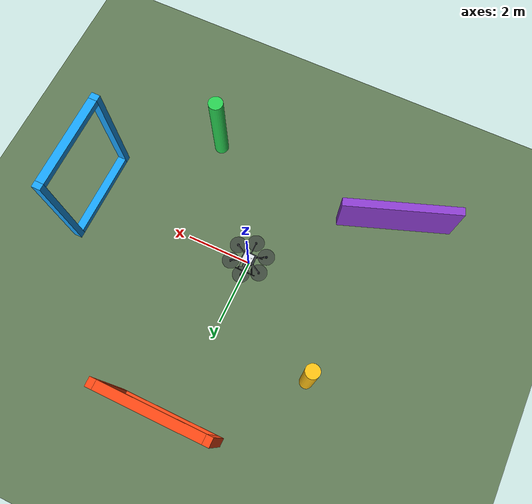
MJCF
<mujoco model="e6106-equivalent-nominal-9kg">
  <compiler angle="degree" inertiafromgeom="true" inertiagrouprange="5 5" />
  <option timestep="0.001" density="1.204" viscosity="0.000018" integrator="RK4" />
  <visual>
    <global azimuth="135" elevation="-20" />
    <rgba haze="0.72 0.84 0.96 1" />
    <headlight ambient="0.55 0.55 0.55" diffuse="0.8 0.8 0.8" specular="0.25 0.25 0.25" />
  </visual>
  <asset>
    <texture name="fpv_sky" type="skybox" builtin="gradient" rgb1="0.62 0.78 0.95" rgb2="0.78 0.94 1" width="512" height="3072" />
  </asset>
  <worldbody>
    <light name="key-light" pos="0 -5 12" dir="0 0.25 -1" diffuse="0.95 0.95 0.92" ambient="0.25 0.25 0.25" directional="true" castshadow="true" />
    <light name="fill-light" pos="8 4 7" dir="-0.7 -0.3 -1" diffuse="0.55 0.65 0.8" ambient="0.12 0.12 0.16" directional="true" castshadow="true" />
    <geom name="ground" type="plane" size="30 30 0.1" rgba="0.38 0.48 0.34 1" friction="0.35 0.02 0.001" />
    <body name="course_north-gate" pos="0 5 1.8" euler="0 0 0">
      <geom contype="5" conaffinity="3" friction="0.12 0.002 0.0001" condim="3" rgba="1 0.28 0.08 1" name="north-gate_left" type="box" pos="-1.49 0 0" size="0.09 0.125 1.58" />
      <geom contype="5" conaffinity="3" friction="0.12 0.002 0.0001" condim="3" rgba="1 0.28 0.08 1" name="north-gate_right" type="box" pos="1.49 0 0" size="0.09 0.125 1.58" />
      <geom contype="5" conaffinity="3" friction="0.12 0.002 0.0001" condim="3" rgba="1 0.28 0.08 1" name="north-gate_top" type="box" pos="0 0 1.49" size="1.4 0.125 0.09" />
      <geom contype="5" conaffinity="3" friction="0.12 0.002 0.0001" condim="3" rgba="1 0.28 0.08 1" name="north-gate_bottom" type="box" pos="0 0 -1.49" size="1.4 0.125 0.09" />
    </body>
    <body name="course_east-gate" pos="5 0 2" euler="0 0 90">
      <geom contype="5" conaffinity="3" friction="0.12 0.002 0.0001" condim="3" rgba="0.1 0.65 1 1" name="east-gate_left" type="box" pos="-1.39 0 0" size="0.09 0.125 1.68" />
      <geom contype="5" conaffinity="3" friction="0.12 0.002 0.0001" condim="3" rgba="0.1 0.65 1 1" name="east-gate_right" type="box" pos="1.39 0 0" size="0.09 0.125 1.68" />
      <geom contype="5" conaffinity="3" friction="0.12 0.002 0.0001" condim="3" rgba="0.1 0.65 1 1" name="east-gate_top" type="box" pos="0 0 1.59" size="1.3 0.125 0.09" />
      <geom contype="5" conaffinity="3" friction="0.12 0.002 0.0001" condim="3" rgba="0.1 0.65 1 1" name="east-gate_bottom" type="box" pos="0 0 -1.59" size="1.3 0.125 0.09" />
    </body>
    <body name="course_west-pylon" pos="-3 2.5 1.25" euler="0 0 0">
      <geom contype="5" conaffinity="3" friction="0.12 0.002 0.0001" condim="3" rgba="1 0.76 0.08 1" name="west-pylon_geom" type="cylinder" size="0.2 1.25" />
    </body>
    <body name="course_south-pylon" pos="2.5 -3.2 1.25" euler="0 0 0">
      <geom contype="5" conaffinity="3" friction="0.12 0.002 0.0001" condim="3" rgba="0.16 0.82 0.32 1" name="south-pylon_geom" type="cylinder" size="0.22 1.25" />
    </body>
    <body name="course_low-wall" pos="-3.5 -3 0.75" euler="0 0 20">
      <geom contype="5" conaffinity="3" friction="0.12 0.002 0.0001" condim="3" rgba="0.55 0.24 0.82 1" name="low-wall_geom" type="box" size="1.75 0.125 0.75" />
    </body>
    <body name="drone_base" pos="0 0 0.4845">
      <freejoint name="drone_freejoint" />
      <geom name="frame_chassis" type="box" pos="0 0 0.03" quat="1 0 0 0" size="0.19 0.16 0.06" rgba="0.16 0.18 0.2 1" mass="0" group="1" contype="0" conaffinity="0" />
      <geom name="frame_canopy" type="box" pos="0 0 0.095" quat="1 0 0 0" size="0.15 0.12 0.045" rgba="0.88 0.9 0.92 1" mass="0" group="1" contype="0" conaffinity="0" />
      <geom name="frame_arm_1" type="cylinder" pos="0.272798 0.1575 0" quat="0.683012701892 -0.183012701892 0.683012701892 0.183012701892" size="0.018 0.215" rgba="0.08 0.09 0.1 1" mass="0" group="1" contype="0" conaffinity="0" />
      <geom name="frame_arm_2" type="cylinder" pos="0 0.315 0" quat="0.5 -0.5 0.5 0.5" size="0.018 0.215" rgba="0.08 0.09 0.1 1" mass="0" group="1" contype="0" conaffinity="0" />
      <geom name="frame_arm_3" type="cylinder" pos="-0.272798 0.1575 0" quat="0.183012701892 -0.683012701892 0.183012701892 0.683012701892" size="0.018 0.215" rgba="0.08 0.09 0.1 1" mass="0" group="1" contype="0" conaffinity="0" />
      <geom name="frame_arm_4" type="cylinder" pos="-0.272798 -0.1575 0" quat="0.183012701892 0.683012701892 0.183012701892 -0.683012701892" size="0.018 0.215" rgba="0.08 0.09 0.1 1" mass="0" group="1" contype="0" conaffinity="0" />
      <geom name="frame_arm_5" type="cylinder" pos="0 -0.315 0" quat="0.5 0.5 0.5 -0.5" size="0.018 0.215" rgba="0.08 0.09 0.1 1" mass="0" group="1" contype="0" conaffinity="0" />
      <geom name="frame_arm_6" type="cylinder" pos="0.272798 -0.1575 0" quat="0.683012701892 0.183012701892 0.683012701892 -0.183012701892" size="0.018 0.215" rgba="0.08 0.09 0.1 1" mass="0" group="1" contype="0" conaffinity="0" />
      <geom name="frame_chassis_contact" type="box" pos="0 0 0.03" quat="1 0 0 0" size="0.19 0.16 0.06" rgba="0 0 0 0" mass="0" group="2" contype="1" conaffinity="1" friction="0.5 0.02 0.001" />
      <geom name="frame_central_mass_proxy" type="box" pos="0 0 0.03" quat="1 0 0 0" size="0.19 0.16 0.06" rgba="0 0 0 0" density="148.774897536" group="5" contype="0" conaffinity="0" />
      <geom name="frame_arm_mass_1" type="cylinder" pos="0.272798 0.1575 0" quat="0.683012701892 -0.183012701892 0.683012701892 0.183012701892" size="0.027 0.215" rgba="0 0 0 0" density="148.774897536" group="5" contype="0" conaffinity="0" />
      <geom name="frame_arm_mass_2" type="cylinder" pos="0 0.315 0" quat="0.5 -0.5 0.5 0.5" size="0.027 0.215" rgba="0 0 0 0" density="148.774897536" group="5" contype="0" conaffinity="0" />
      <geom name="frame_arm_mass_3" type="cylinder" pos="-0.272798 0.1575 0" quat="0.183012701892 -0.683012701892 0.183012701892 0.683012701892" size="0.027 0.215" rgba="0 0 0 0" density="148.774897536" group="5" contype="0" conaffinity="0" />
      <geom name="frame_arm_mass_4" type="cylinder" pos="-0.272798 -0.1575 0" quat="0.183012701892 0.683012701892 0.183012701892 -0.683012701892" size="0.027 0.215" rgba="0 0 0 0" density="148.774897536" group="5" contype="0" conaffinity="0" />
      <geom name="frame_arm_mass_5" type="cylinder" pos="0 -0.315 0" quat="0.5 0.5 0.5 -0.5" size="0.027 0.215" rgba="0 0 0 0" density="148.774897536" group="5" contype="0" conaffinity="0" />
      <geom name="frame_arm_mass_6" type="cylinder" pos="0.272798 -0.1575 0" quat="0.683012701892 0.183012701892 0.683012701892 -0.183012701892" size="0.027 0.215" rgba="0 0 0 0" density="148.774897536" group="5" contype="0" conaffinity="0" />
      <geom name="motor_prop1_housing" type="cylinder" pos="0.458993 0.265 -0.018" quat="1 0 0 0" size="0.035 0.018" rgba="0.1 0.11 0.12 1" mass="0" group="1" contype="0" conaffinity="0" />
      <geom name="motor_prop1_mass_proxy" type="cylinder" pos="0.458993 0.265 -0.018" quat="1 0 0 0" size="0.035 0.018" rgba="0 0 0 0" density="1443.58225027" group="5" contype="0" conaffinity="0" />
      <geom name="propeller_prop1_mass_proxy" type="cylinder" pos="0.458993 0.265 0" quat="1 0 0 0" size="0.254 0.003" rgba="0 0 0 0" density="41.1151091956" group="5" contype="0" conaffinity="0" />
      <geom name="motor_prop2_housing" type="cylinder" pos="0 0.53 -0.018" quat="1 0 0 0" size="0.035 0.018" rgba="0.1 0.11 0.12 1" mass="0" group="1" contype="0" conaffinity="0" />
      <geom name="motor_prop2_mass_proxy" type="cylinder" pos="0 0.53 -0.018" quat="1 0 0 0" size="0.035 0.018" rgba="0 0 0 0" density="1443.58225027" group="5" contype="0" conaffinity="0" />
      <geom name="propeller_prop2_mass_proxy" type="cylinder" pos="0 0.53 0" quat="1 0 0 0" size="0.254 0.003" rgba="0 0 0 0" density="41.1151091956" group="5" contype="0" conaffinity="0" />
      <geom name="motor_prop3_housing" type="cylinder" pos="-0.458993 0.265 -0.018" quat="1 0 0 0" size="0.035 0.018" rgba="0.1 0.11 0.12 1" mass="0" group="1" contype="0" conaffinity="0" />
      <geom name="motor_prop3_mass_proxy" type="cylinder" pos="-0.458993 0.265 -0.018" quat="1 0 0 0" size="0.035 0.018" rgba="0 0 0 0" density="1443.58225027" group="5" contype="0" conaffinity="0" />
      <geom name="propeller_prop3_mass_proxy" type="cylinder" pos="-0.458993 0.265 0" quat="1 0 0 0" size="0.254 0.003" rgba="0 0 0 0" density="41.1151091956" group="5" contype="0" conaffinity="0" />
      <geom name="motor_prop4_housing" type="cylinder" pos="-0.458993 -0.265 -0.018" quat="1 0 0 0" size="0.035 0.018" rgba="0.1 0.11 0.12 1" mass="0" group="1" contype="0" conaffinity="0" />
      <geom name="motor_prop4_mass_proxy" type="cylinder" pos="-0.458993 -0.265 -0.018" quat="1 0 0 0" size="0.035 0.018" rgba="0 0 0 0" density="1443.58225027" group="5" contype="0" conaffinity="0" />
      <geom name="propeller_prop4_mass_proxy" type="cylinder" pos="-0.458993 -0.265 0" quat="1 0 0 0" size="0.254 0.003" rgba="0 0 0 0" density="41.1151091956" group="5" contype="0" conaffinity="0" />
      <geom name="motor_prop5_housing" type="cylinder" pos="0 -0.53 -0.018" quat="1 0 0 0" size="0.035 0.018" rgba="0.1 0.11 0.12 1" mass="0" group="1" contype="0" conaffinity="0" />
      <geom name="motor_prop5_mass_proxy" type="cylinder" pos="0 -0.53 -0.018" quat="1 0 0 0" size="0.035 0.018" rgba="0 0 0 0" density="1443.58225027" group="5" contype="0" conaffinity="0" />
      <geom name="propeller_prop5_mass_proxy" type="cylinder" pos="0 -0.53 0" quat="1 0 0 0" size="0.254 0.003" rgba="0 0 0 0" density="41.1151091956" group="5" contype="0" conaffinity="0" />
      <geom name="motor_prop6_housing" type="cylinder" pos="0.458993 -0.265 -0.018" quat="1 0 0 0" size="0.035 0.018" rgba="0.1 0.11 0.12 1" mass="0" group="1" contype="0" conaffinity="0" />
      <geom name="motor_prop6_mass_proxy" type="cylinder" pos="0.458993 -0.265 -0.018" quat="1 0 0 0" size="0.035 0.018" rgba="0 0 0 0" density="1443.58225027" group="5" contype="0" conaffinity="0" />
      <geom name="propeller_prop6_mass_proxy" type="cylinder" pos="0.458993 -0.265 0" quat="1 0 0 0" size="0.254 0.003" rgba="0 0 0 0" density="41.1151091956" group="5" contype="0" conaffinity="0" />
      <geom name="battery_pack_front" type="box" pos="0.105 0 -0.12" quat="1 0 0 0" size="0.085 0.06 0.035" rgba="0.12 0.18 0.24 1" mass="0" group="1" contype="0" conaffinity="0" />
      <geom name="battery_pack_rear" type="box" pos="-0.105 0 -0.12" quat="1 0 0 0" size="0.085 0.06 0.035" rgba="0.12 0.18 0.24 1" mass="0" group="1" contype="0" conaffinity="0" />
      <geom name="battery_pack_front_mass" type="box" pos="0.105 0 -0.12" quat="1 0 0 0" size="0.085 0.06 0.035" rgba="0 0 0 0" density="1330.53221289" group="5" contype="0" conaffinity="0" />
      <geom name="battery_pack_rear_mass" type="box" pos="-0.105 0 -0.12" quat="1 0 0 0" size="0.085 0.06 0.035" rgba="0 0 0 0" density="1330.53221289" group="5" contype="0" conaffinity="0" />
      <geom name="camera_mass_proxy" type="box" pos="0.185 0 0.015" quat="1 0 0 0" size="0.0225 0.02 0.0175" rgba="0 0 0 0" density="507.936507937" group="5" contype="0" conaffinity="0" />
      <geom name="controller_mass_proxy" type="box" pos="0 0 0.055" quat="1 0 0 0" size="0.018 0.018 0.004" rgba="0 0 0 0" density="1736.11111111" group="5" contype="0" conaffinity="0" />
      <geom name="landing_gear_front_left_strut" type="cylinder" pos="0.2 0.215 -0.2375" quat="0.152322816943 -0.551071885868 0.813929774129 0.103130300256" size="0.011 0.2225" rgba="0.1 0.11 0.12 1" mass="0" group="1" contype="0" conaffinity="0" />
      <geom name="landing_gear_front_right_strut" type="cylinder" pos="0.2 -0.215 -0.2375" quat="0.152322816943 0.551071885868 0.813929774129 -0.103130300256" size="0.011 0.2225" rgba="0.1 0.11 0.12 1" mass="0" group="1" contype="0" conaffinity="0" />
      <geom name="landing_gear_rear_left_strut" type="cylinder" pos="-0.2 0.215 -0.2375" quat="0.103130300256 -0.813929774129 0.551071885868 0.152322816943" size="0.011 0.2225" rgba="0.1 0.11 0.12 1" mass="0" group="1" contype="0" conaffinity="0" />
      <geom name="landing_gear_rear_right_strut" type="cylinder" pos="-0.2 -0.215 -0.2375" quat="0.103130300256 0.813929774129 0.551071885868 -0.152322816943" size="0.011 0.2225" rgba="0.1 0.11 0.12 1" mass="0" group="1" contype="0" conaffinity="0" />
      <geom name="landing_gear_left_skid" type="capsule" pos="0 0.29 -0.462" quat="0.707106781187 0 0.707106781187 0" size="0.0125 0.31" rgba="0.08 0.09 0.1 1" mass="0" group="1" contype="0" conaffinity="0" />
      <geom name="landing_gear_right_skid" type="capsule" pos="0 -0.29 -0.462" quat="0.707106781187 0 0.707106781187 0" size="0.0125 0.31" rgba="0.08 0.09 0.1 1" mass="0" group="1" contype="0" conaffinity="0" />
      <geom name="landing_gear_left_skid_contact" type="capsule" pos="0 0.29 -0.462" quat="0.707106781187 0 0.707106781187 0" size="0.0125 0.31" rgba="0 0 0 0" mass="0" group="2" contype="1" conaffinity="1" friction="1 0.02 0.001" />
      <geom name="landing_gear_right_skid_contact" type="capsule" pos="0 -0.29 -0.462" quat="0.707106781187 0 0.707106781187 0" size="0.0125 0.31" rgba="0 0 0 0" mass="0" group="2" contype="1" conaffinity="1" friction="1 0.02 0.001" />
      <geom name="landing_gear_front_left_strut_mass" type="cylinder" pos="0.2 0.215 -0.2375" quat="0.152322816943 -0.551071885868 0.813929774129 0.103130300256" size="0.011 0.2225" rgba="0 0 0 0" density="345.706484916" group="5" contype="0" conaffinity="0" />
      <geom name="landing_gear_front_right_strut_mass" type="cylinder" pos="0.2 -0.215 -0.2375" quat="0.152322816943 0.551071885868 0.813929774129 -0.103130300256" size="0.011 0.2225" rgba="0 0 0 0" density="345.706484916" group="5" contype="0" conaffinity="0" />
      <geom name="landing_gear_rear_left_strut_mass" type="cylinder" pos="-0.2 0.215 -0.2375" quat="0.103130300256 -0.813929774129 0.551071885868 0.152322816943" size="0.011 0.2225" rgba="0 0 0 0" density="345.706484916" group="5" contype="0" conaffinity="0" />
      <geom name="landing_gear_rear_right_strut_mass" type="cylinder" pos="-0.2 -0.215 -0.2375" quat="0.103130300256 0.813929774129 0.551071885868 -0.152322816943" size="0.011 0.2225" rgba="0 0 0 0" density="345.706484916" group="5" contype="0" conaffinity="0" />
      <geom name="landing_gear_left_skid_mass" type="capsule" pos="0 0.29 -0.462" quat="0.707106781187 0 0.707106781187 0" size="0.0125 0.31" rgba="0 0 0 0" density="345.706484916" group="5" contype="0" conaffinity="0" />
      <geom name="landing_gear_right_skid_mass" type="capsule" pos="0 -0.29 -0.462" quat="0.707106781187 0 0.707106781187 0" size="0.0125 0.31" rgba="0 0 0 0" density="345.706484916" group="5" contype="0" conaffinity="0" />
      <geom name="attachment_payload_rail_crossbar_front" type="box" pos="0.1 0 -0.2" quat="1 0 0 0" size="0.0125 0.21 0.0125" rgba="0.16 0.17 0.18 1" mass="0" group="1" contype="0" conaffinity="0" />
      <geom name="attachment_payload_rail_crossbar_rear" type="box" pos="-0.1 0 -0.2" quat="1 0 0 0" size="0.0125 0.21 0.0125" rgba="0.16 0.17 0.18 1" mass="0" group="1" contype="0" conaffinity="0" />
      <geom name="attachment_payload_rail_crossbar_front_mass" type="box" pos="0.1 0 -0.2" quat="1 0 0 0" size="0.0125 0.21 0.0125" rgba="0 0 0 0" density="285.714285714" group="5" contype="0" conaffinity="0" />
      <geom name="attachment_payload_rail_crossbar_rear_mass" type="box" pos="-0.1 0 -0.2" quat="1 0 0 0" size="0.0125 0.21 0.0125" rgba="0 0 0 0" density="285.714285714" group="5" contype="0" conaffinity="0" />
      <geom name="attachment_gps_mast" type="cylinder" pos="-0.08 0 0.089" quat="1 0 0 0" size="0.005 0.035" rgba="0.08 0.09 0.1 1" mass="0" group="1" contype="0" conaffinity="0" />
      <geom name="attachment_gps_antenna" type="cylinder" pos="-0.08 0 0.132" quat="1 0 0 0" size="0.035 0.008" rgba="0.92 0.92 0.9 1" mass="0" group="1" contype="0" conaffinity="0" />
      <body name="prop1" pos="0.458993 0.265 0">
        <geom name="prop1_geom" type="cylinder" size="0.254 0.0015" mass="0" contype="2" conaffinity="4" rgba="0.18 0.18 0.20 0.55" />
        <site name="prop1_axis" type="sphere" size="0.006" rgba="0.9 0.2 0.15 1" />
      </body>
      <body name="prop2" pos="0 0.53 0">
        <geom name="prop2_geom" type="cylinder" size="0.254 0.0015" mass="0" contype="2" conaffinity="4" rgba="0.18 0.18 0.20 0.55" />
        <site name="prop2_axis" type="sphere" size="0.006" rgba="0.15 0.55 1 1" />
      </body>
      <body name="prop3" pos="-0.458993 0.265 0">
        <geom name="prop3_geom" type="cylinder" size="0.254 0.0015" mass="0" contype="2" conaffinity="4" rgba="0.18 0.18 0.20 0.55" />
        <site name="prop3_axis" type="sphere" size="0.006" rgba="0.9 0.2 0.15 1" />
      </body>
      <body name="prop4" pos="-0.458993 -0.265 0">
        <geom name="prop4_geom" type="cylinder" size="0.254 0.0015" mass="0" contype="2" conaffinity="4" rgba="0.18 0.18 0.20 0.55" />
        <site name="prop4_axis" type="sphere" size="0.006" rgba="0.15 0.55 1 1" />
      </body>
      <body name="prop5" pos="0 -0.53 0">
        <geom name="prop5_geom" type="cylinder" size="0.254 0.0015" mass="0" contype="2" conaffinity="4" rgba="0.18 0.18 0.20 0.55" />
        <site name="prop5_axis" type="sphere" size="0.006" rgba="0.9 0.2 0.15 1" />
      </body>
      <body name="prop6" pos="0.458993 -0.265 0">
        <geom name="prop6_geom" type="cylinder" size="0.254 0.0015" mass="0" contype="2" conaffinity="4" rgba="0.18 0.18 0.20 0.55" />
        <site name="prop6_axis" type="sphere" size="0.006" rgba="0.15 0.55 1 1" />
      </body>
      <geom name="fpv_camera" type="box" pos="0.185 0 0.015" size="0.0225 0.02 0.0175" mass="0" contype="0" conaffinity="0" rgba="0.15 0.15 0.15 1" />
      <camera name="fpv" pos="0.185 0 0.015" xyaxes="0 -1 0 0 0 1" fovy="90" />
    </body>
  </worldbody>
</mujoco>
